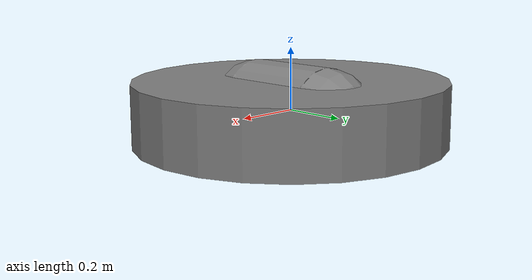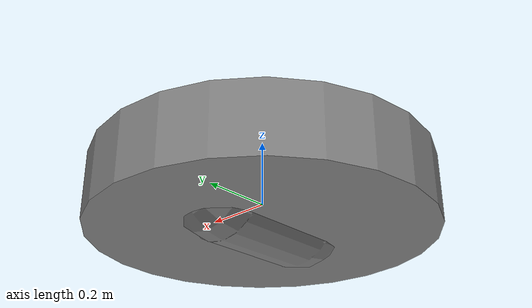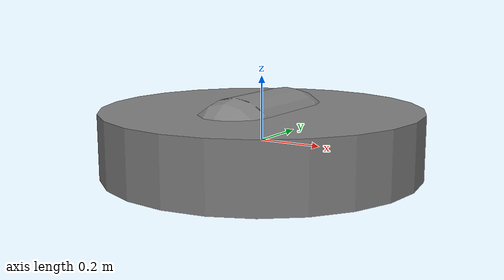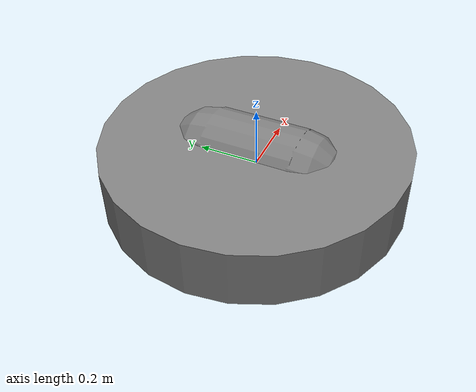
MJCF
<mujoco model="double pendulum">

    <compiler inertiafromgeom="true"/> <!-- Angle units are radians. -->

    <option iterations="1" ls_iterations="5">
        <flag eulerdamp="disable"/>
    </option>

    <default> <!-- Applies to all bodies. -->
        <joint armature="0" damping="1"/>
        <geom contype="0" conaffinity="0" friction="1 0.1 0.1"/> <!-- No contact. -->
    </default>

    <worldbody>
<!-- We will create a separate scene file with tags such as ambient light. -->
        <geom name="base" type="cylinder" size="0.5 0.1" pos="0 0 0" quat="1 0 0 0"/>
        <!-- What does quat mean? -->
        <geom name="base-joint-geom" type="capsule" size="0.15 0.15" pos="0 0 0" quat="0 0 1 1" />

    </worldbody>

</mujoco>
